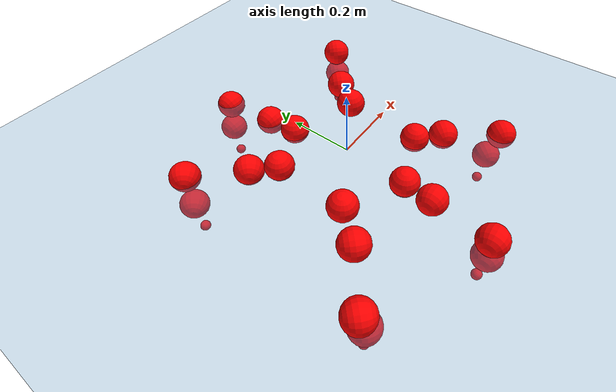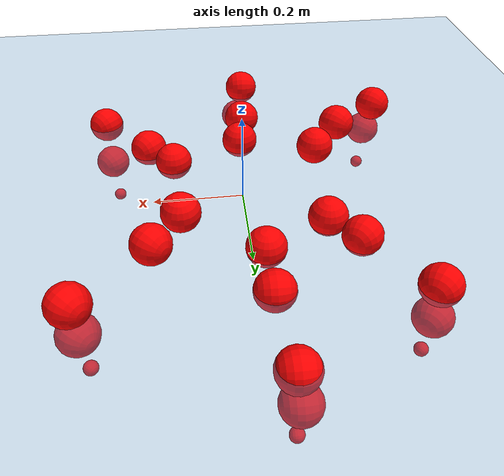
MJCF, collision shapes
<mujoco model="Golem">
  <compiler angle="radian" assetdir="assets" balanceinertia="true" inertiafromgeom="false"/>

  <option timestep="0.005" density="1.2" viscosity="2e-05"/>

  <size nkey="1"/>

  <visual>
    <quality shadowsize="8192"/>
    <map shadowclip="0.5"/>
  </visual>

  <default>
    <default class="/">
      <joint armature="0.01" damping="0.01" frictionloss="0.01"/>
      <geom contype="0" conaffinity="0" group="1" solref="-1000 -80"/>
      <site size="0.01 0.005 0.005" group="5"/>
      <general forcelimited="true" biastype="affine" gainprm="25" biasprm="0 -25 -0.5"/>
      <default class="visual">
        <geom type="mesh" group="2"/>
      </default>
      <default class="collision">
        <geom group="3"/>
      </default>
      <default class="foot">
        <geom size="0.01 0 0" condim="6" group="4" priority="1" solimp="0.015 1 0.01"/>
      </default>
      <default class="reward_collision_sphere">
        <geom group="5" rgba="1 0 0 1"/>
      </default>
    </default>
  </default>

  <asset>
    <texture type="skybox" colorspace="auto" name="//unnamed_texture_0" builtin="gradient" rgb1="0.95 0.95 0.95" rgb2="0.95 0.95 0.95" width="100" height="600"/>
    <texture type="2d" colorspace="auto" name="texplane" builtin="checker" rgb1="0.345 0.575 0.748" rgb2="0.345 0.575 0.748" markrgb="1 1 1" width="512" height="512"/>
    <material name="MatPlane" class="/" texture="texplane" texuniform="true" texrepeat="2 2" specular="0.9"/>
    <mesh name="body" class="/" file="body.stl" scale="0.001 0.001 0.001"/>
    <mesh name="coxa" class="/" file="coxa.stl" scale="0.001 0.001 0.001"/>
    <mesh name="femur" class="/" file="femur.stl" scale="0.001 0.001 0.001"/>
    <mesh name="tibia" class="/" file="tibia.stl" scale="0.001 0.001 0.001"/>
    <mesh name="tarsus" class="/" file="tarsus.stl" scale="0.001 0.001 0.001"/>
  </asset>

  <worldbody>
    <geom name="floor" class="/" size="100 100 0.125" type="plane" group="0" material="MatPlane"/>
    <light name="toplight_shadow" class="/" pos="0 0 5" dir="0.0990148 0.0990148 -0.990148" type="directional" ambient="0.04 0.04 0.04" diffuse="0.55 0.55 0.55" specular="0.12 0.12 0.12"/>
    <light name="toplight_fill" class="/" pos="0 0 5" dir="0.0990148 0.0990148 -0.990148" type="directional" castshadow="false" ambient="0.04 0.04 0.04" diffuse="0.3 0.3 0.3" specular="0.08 0.08 0.08"/>
    <body name="trunk" pos="-0.0161624 -0.0110095 -0.0103312" quat="1 -5.69768e-06 0.000121542 1.04334e-05">
      <inertial pos="-0.00665325 -0.00544058 -0.00549291" quat="0.999938 0.00420911 -0.00991603 0.00270628" mass="4.8244" diaginertia="0.0215806 0.124186 0.000339827"/>
      <joint name="//unnamed_joint_0" type="free"/>
      <geom name="//unnamed_geom_1" class="/" pos="0 0 0.0326837" quat="1 0 0 0" type="mesh" rgba="0.9 0.9 0.9 1" mesh="body"/>
      <site name="imu" class="/" pos="0.0664435 -0.0740219 0.0154017" size="0.0108325"/>
      <camera name="track" class="/" pos="0 -3.28163 0" quat="0.707107 0.707107 0 0" mode="trackcom"/>
      <camera name="ego_camera" class="/" pos="0.142772 0 0.0510683" quat="-0.5 -0.5 0.5 0.5"/>
      <body name="coxa_RR" pos="-0.195736 -0.135555 0.0489778" quat="0.382617 0.000419037 -0.000313208 -0.923907">
        <inertial pos="0.00109541 0.0168696 0.00898971" quat="0.998062 0.00355665 0.0114252 -0.0610644" mass="0.28633" diaginertia="0.0171421 0.12794 0.000376115"/>
        <joint name="coxa_joint_RR" class="/" pos="0 0 0" axis="0.0137603 0.0435978 -0.998954" stiffness="0.0743288" range="-3.13368 3.11792" armature="0.0178156" damping="0.0477732" frictionloss="0.0109645"/>
        <geom name="//unnamed_geom_2" class="/" type="mesh" rgba="0.2 0.2 0.2 1" mesh="coxa"/>
        <geom name="//unnamed_geom_3" class="reward_collision_sphere" size="0.0433299" pos="-0.0329473 0 0"/>
        <body name="femur_RR" pos="0.0808882 0.00986569 0.00487082" quat="0.500408 -0.50001 0.499675 0.499907">
          <inertial pos="0.0096484 0.00837451 0.00190005" quat="0.999334 0.00907862 -0.0235033 -0.0263908" mass="0.248919" diaginertia="0.0158811 0.106977 0.00026671"/>
          <joint name="femur_joint_RR" class="/" pos="0 0 0" axis="0.0259209 0.0226896 -0.999406" stiffness="0.0770061" range="-2.84597 3.38478" armature="0.0143752" damping="0.00674315" frictionloss="0.00321116"/>
          <geom name="//unnamed_geom_4" class="/" type="mesh" rgba="0.9 0.9 0.9 1" mesh="femur"/>
          <geom name="//unnamed_geom_5" class="reward_collision_sphere" size="0.0433299"/>
          <body name="tibia_RR" pos="0.0118084 -0.161624 -0.0170969" quat="0.00539913 0.999965 -0.00458065 0.00439591">
            <inertial pos="0.0147098 0.00559254 0.00126886" quat="0.999945 -0.00504411 -0.00910962 -0.000867374" mass="0.24115" diaginertia="0.0190689 0.146966 0.000452078"/>
            <joint name="tibia_joint_RR" class="/" pos="0 0 0" axis="0.0142239 0.0710748 0.99737" stiffness="0.00797637" range="-3.3233 2.91321" armature="0.0135478" damping="0.0250058" frictionloss="0.0105685"/>
            <geom name="//unnamed_geom_6" class="/" type="mesh" rgba="0.2 0.2 0.2 1" mesh="tibia"/>
            <geom name="//unnamed_geom_7" class="reward_collision_sphere" size="0.0433299"/>
            <body name="tarsus_RR" pos="0.0830838 -0.00359669 -0.0142586" quat="1 -9.96578e-05 -1.00378e-06 -3.08143e-05">
              <inertial pos="0.0513334 0.000703124 -0.00949024" quat="0.527405 0.488875 0.495284 0.487379" mass="0.258156" diaginertia="0.0143306 0.102797 0.0003554"/>
              <joint name="tarsus_joint_RR" class="/" pos="0 0 0" axis="0.00178695 -0.00230987 0.999996" range="-2.84753 2.90575" armature="0.0145214" damping="0.0218762" frictionloss="0.0160612"/>
              <geom name="//unnamed_geom_8" class="/" type="mesh" rgba="0.9 0.9 0.9 1" mesh="tarsus"/>
              <geom name="foot_1" class="foot" size="0.0112765" pos="0.123003 0 0" quat="0 -0.707107 0 0.707107"/>
              <geom name="//unnamed_geom_10" class="reward_collision_sphere" size="0.0433299"/>
              <geom name="//unnamed_geom_11" class="reward_collision_sphere" size="0.0162487" pos="0.118061 0 0"/>
              <site name="foot_1" class="foot" pos="0.123003 0 0" quat="0 -0.707107 0 0.707107" size="0.0108325"/>
            </body>
          </body>
        </body>
      </body>
      <body name="coxa_RM" pos="0.00200256 -0.226389 0.0252482" quat="0.704749 0.00216714 -0.00416736 -0.709441">
        <inertial pos="-0.0126945 -0.000209952 0.00940609" quat="0.998916 0.0220388 0.040552 -0.00608185" mass="0.283235" diaginertia="0.018027 0.143629 0.000295515"/>
        <joint name="coxa_joint_RM" class="/" pos="0 0 0" axis="-0.0218762 0.0194678 -0.999571" range="-2.97415 3.02988" armature="0.0109005" damping="0.0683707" frictionloss="0.0205559"/>
        <geom name="//unnamed_geom_12" class="/" type="mesh" rgba="0.2 0.2 0.2 1" mesh="coxa"/>
        <geom name="//unnamed_geom_13" class="reward_collision_sphere" size="0.0433299" pos="-0.0329473 0 0"/>
        <body name="femur_RM" pos="0.0582395 -0.0140936 0.00764172" quat="0.500988 -0.496765 0.496177 0.506008">
          <inertial pos="-0.0062052 0.00875417 -0.000635792" quat="0.999209 0.0322146 0.0176008 0.0152656" mass="0.206871" diaginertia="0.0127011 0.10998 0.000270134"/>
          <joint name="femur_joint_RM" class="/" pos="0 0 0" axis="0.0213219 0.050819 -0.99848" range="-3.21125 3.14412" armature="0.0159665" damping="0" frictionloss="0.0111945"/>
          <geom name="//unnamed_geom_14" class="/" type="mesh" rgba="0.9 0.9 0.9 1" mesh="femur"/>
          <geom name="//unnamed_geom_15" class="reward_collision_sphere" size="0.0433299"/>
          <body name="tibia_RM" pos="0.00403731 -0.174853 -0.0166402" quat="0.000817212 0.999999 8.64699e-05 -0.00100204">
            <inertial pos="-0.0120404 0.0165981 -0.00194864" quat="0.997191 0.0426595 0.0562718 -0.0249669" mass="0.331551" diaginertia="0.0179559 0.103158 0.00040636"/>
            <joint name="tibia_joint_RM" class="/" pos="0 0 0" axis="-0.000481423 0.000483979 1" range="-2.83919 2.78161" armature="0.0113453" damping="0.00821996" frictionloss="0.00750302"/>
            <geom name="//unnamed_geom_16" class="/" type="mesh" rgba="0.2 0.2 0.2 1" mesh="tibia"/>
            <geom name="//unnamed_geom_17" class="reward_collision_sphere" size="0.0433299"/>
            <body name="tarsus_RM" pos="0.0955133 0.00541926 -0.0117489" quat="1 -0.000135871 -0.000145002 0.000121914">
              <inertial pos="0.0600552 0.0118841 -0.0130241" quat="0.45659 0.544035 0.534781 0.457778" mass="0.201162" diaginertia="0.0188428 0.134804 0.000403841"/>
              <joint name="tarsus_joint_RM" class="/" pos="0 0 0" axis="0.0144175 -0.00341243 0.99989" stiffness="0.0612602" range="-3.37022 3.27627" armature="0.00584298" damping="0.00936549" frictionloss="0.0114942"/>
              <geom name="//unnamed_geom_18" class="/" type="mesh" rgba="0.9 0.9 0.9 1" mesh="tarsus"/>
              <geom name="foot_2" class="foot" size="0.00811989" pos="0.123003 0 0" quat="0 -0.707107 0 0.707107"/>
              <geom name="//unnamed_geom_20" class="reward_collision_sphere" size="0.0433299"/>
              <geom name="//unnamed_geom_21" class="reward_collision_sphere" size="0.0162487" pos="0.118061 0 0"/>
              <site name="foot_2" class="foot" pos="0.123003 0 0" quat="0 -0.707107 0 0.707107" size="0.0108325"/>
            </body>
          </body>
        </body>
      </body>
      <body name="coxa_RF" pos="0.192689 -0.152577 0.0179557" quat="0.923638 0.00096392 0.000816117 -0.383264">
        <inertial pos="0.00734872 -0.0104901 -0.00231335" quat="0.999999 -0.000958588 -0.000143117 -0.00106947" mass="0.237078" diaginertia="0.0158447 0.100338 0.000362101"/>
        <joint name="coxa_joint_RF" class="/" pos="0 0 0" axis="-0.0135767 0.00565809 -0.999892" range="-3.18473 3.01014" armature="0.00311441" damping="0" frictionloss="0.0091293"/>
        <geom name="//unnamed_geom_22" class="/" type="mesh" rgba="0.2 0.2 0.2 1" mesh="coxa"/>
        <geom name="//unnamed_geom_23" class="reward_collision_sphere" size="0.0433299" pos="-0.0329473 0 0"/>
        <body name="femur_RF" pos="0.0553761 -0.00143443 0.000493801" quat="0.501177 -0.502479 0.49723 0.499098">
          <inertial pos="-0.00872736 0.0116516 -0.00241188" quat="0.998997 -0.0156946 0.0419056 -0.0017432" mass="0.285486" diaginertia="0.0157506 0.151841 0.000313473"/>
          <joint name="femur_joint_RF" class="/" pos="0 0 0" axis="-0.00113599 -0.000953253 -0.999999" range="-2.80965 2.99113" armature="0.0193558" damping="0.0147369" frictionloss="0.0036136"/>
          <geom name="//unnamed_geom_24" class="/" type="mesh" rgba="0.9 0.9 0.9 1" mesh="femur"/>
          <geom name="//unnamed_geom_25" class="reward_collision_sphere" size="0.0433299"/>
          <body name="tibia_RF" pos="0.0133832 -0.182519 -0.0171432" quat="0.000828461 0.999999 0.000228893 -0.000552787">
            <inertial pos="0.0169898 0.00302403 0.00575107" quat="0.999995 -0.00267176 -0.00116223 -0.000721882" mass="0.189883" diaginertia="0.0168426 0.0944598 0.000309727"/>
            <joint name="tibia_joint_RF" class="/" pos="0 0 0" axis="0.0623922 -0.0540175 0.996589" range="-3.00856 3.47142" armature="0.0148387" damping="0.00645404" frictionloss="0.0104705"/>
            <geom name="//unnamed_geom_26" class="/" type="mesh" rgba="0.2 0.2 0.2 1" mesh="tibia"/>
            <geom name="//unnamed_geom_27" class="reward_collision_sphere" size="0.0433299"/>
            <body name="tarsus_RF" pos="0.107411 -0.0155278 -0.0142826" quat="0.999968 -0.00359359 -0.00343473 -0.00619258">
              <inertial pos="0.0653207 -0.00564684 -0.00219451" quat="0.489583 0.502214 0.502067 0.505982" mass="0.266061" diaginertia="0.0149223 0.127441 0.000300414"/>
              <joint name="tarsus_joint_RF" class="/" pos="0 0 0" axis="0.0341942 0.0451049 0.998397" stiffness="0.0419931" range="-2.96971 3.26763" armature="0.00527286" damping="0" frictionloss="0.0162254"/>
              <geom name="//unnamed_geom_28" class="/" type="mesh" rgba="0.9 0.9 0.9 1" mesh="tarsus"/>
              <geom name="foot_3" class="foot" size="0.00558017" pos="0.123003 0 0" quat="0 -0.707107 0 0.707107"/>
              <geom name="//unnamed_geom_30" class="reward_collision_sphere" size="0.0433299"/>
              <geom name="//unnamed_geom_31" class="reward_collision_sphere" size="0.0162487" pos="0.118061 0 0"/>
              <site name="foot_3" class="foot" pos="0.123003 0 0" quat="0 -0.707107 0 0.707107" size="0.0108325"/>
            </body>
          </body>
        </body>
      </body>
      <body name="coxa_LR" pos="-0.178739 0.143505 0.0281934" quat="0.381962 0.00174259 -0.000529178 0.924176">
        <inertial pos="0.0156392 -0.00995511 0.0175305" quat="0.996538 -0.0324208 0.0660222 -0.038747" mass="0.246449" diaginertia="0.0130882 0.0778976 0.000265022"/>
        <joint name="coxa_joint_LR" class="/" pos="0 0 0" axis="-0.0238532 0.0759321 -0.996828" range="-3.00134 3.34424" armature="0.0167661" damping="0.0352218" frictionloss="0.0182245"/>
        <geom name="//unnamed_geom_32" class="/" type="mesh" rgba="0.2 0.2 0.2 1" mesh="coxa"/>
        <geom name="//unnamed_geom_33" class="reward_collision_sphere" size="0.0433299" pos="-0.0329473 0 0"/>
        <body name="femur_LR" pos="0.0520042 -0.00253911 -0.00443689" quat="0.500492 -0.500179 0.499608 0.499722">
          <inertial pos="0.00833617 -0.00361792 0.00367057" quat="0.998614 0.022773 0.0322521 0.0348043" mass="0.253594" diaginertia="0.0153687 0.0961364 0.000353263"/>
          <joint name="femur_joint_LR" class="/" pos="0 0 0" axis="0.04187 0.0364347 0.998459" range="-3.28312 3.20158" armature="0.00806205" damping="0" frictionloss="0.0201066"/>
          <geom name="//unnamed_geom_34" class="/" type="mesh" rgba="0.9 0.9 0.9 1" mesh="femur"/>
          <geom name="//unnamed_geom_35" class="reward_collision_sphere" size="0.0433299"/>
          <body name="tibia_LR" pos="0.0129794 -0.178453 -0.0147198" quat="0.000508522 0.99997 -0.00343501 0.00686691">
            <inertial pos="-0.00277436 -0.00275354 -0.000247657" quat="0.999688 0.00924627 -0.0185184 0.0139673" mass="0.201699" diaginertia="0.0135173 0.113411 0.000320355"/>
            <joint name="tibia_joint_LR" class="/" pos="0 0 0" axis="0.0163967 0.0499186 -0.998619" range="-2.93763 3.41063" armature="0.0125126" damping="0.027421" frictionloss="0.00904404"/>
            <geom name="//unnamed_geom_36" class="/" type="mesh" rgba="0.2 0.2 0.2 1" mesh="tibia"/>
            <geom name="//unnamed_geom_37" class="reward_collision_sphere" size="0.0433299"/>
            <body name="tarsus_LR" pos="0.111434 0.00290699 -0.0133344" quat="0.999968 0.00498763 0.00471988 -0.00402048">
              <inertial pos="0.0489195 0.000250425 0.0168657" quat="0.503591 0.497948 0.499222 0.499221" mass="0.263746" diaginertia="0.0143345 0.124866 0.000327693"/>
              <joint name="tarsus_joint_LR" class="/" pos="0 0 0" axis="0.0474342 -0.057767 -0.997203" stiffness="0.01185" range="-2.85529 3.42316" armature="0.00878381" damping="0.0449765" frictionloss="0.00653437"/>
              <geom name="//unnamed_geom_38" class="/" type="mesh" rgba="0.9 0.9 0.9 1" mesh="tarsus"/>
              <geom name="foot_4" class="foot" size="0.00640882" pos="0.123003 0 0" quat="0.707107 0 -0.707107 0"/>
              <geom name="//unnamed_geom_40" class="reward_collision_sphere" size="0.0433299"/>
              <geom name="//unnamed_geom_41" class="reward_collision_sphere" size="0.0162487" pos="0.118061 0 0"/>
              <site name="foot_4" class="foot" pos="0.123003 0 0" quat="0.707107 0 -0.707107 0" size="0.0108325"/>
            </body>
          </body>
        </body>
      </body>
      <body name="coxa_LM" pos="-0.013475 0.219383 0.0183668" quat="0.70759 0.0012511 -0.00455387 0.706607">
        <inertial pos="-0.00658657 0.00793247 -0.000305421" quat="0.998301 0.0571703 0.000422577 -0.0112569" mass="0.278529" diaginertia="0.0198666 0.12376 0.000381382"/>
        <joint name="coxa_joint_LM" class="/" pos="0 0 0" axis="-0.0201632 0.0108885 -0.999737" stiffness="0.0572744" range="-3.42194 3.08088" armature="0.00555723" damping="0" frictionloss="0.00348474"/>
        <geom name="//unnamed_geom_42" class="/" type="mesh" rgba="0.2 0.2 0.2 1" mesh="coxa"/>
        <geom name="//unnamed_geom_43" class="reward_collision_sphere" size="0.0433299" pos="-0.0329473 0 0"/>
        <body name="femur_LM" pos="0.0680098 0.0026659 -0.0167187" quat="0.495976 -0.501019 0.50443 0.498535">
          <inertial pos="-0.00963206 0.0142024 -0.0173287" quat="0.996768 -0.0542103 0.0286131 0.0519156" mass="0.231531" diaginertia="0.0127659 0.133121 0.000284985"/>
          <joint name="femur_joint_LM" class="/" pos="0 0 0" axis="-0.0250898 -0.052131 0.998325" range="-3.13665 3.41339" armature="0.00551865" damping="0" frictionloss="0.0105117"/>
          <geom name="//unnamed_geom_44" class="/" type="mesh" rgba="0.9 0.9 0.9 1" mesh="femur"/>
          <geom name="//unnamed_geom_45" class="reward_collision_sphere" size="0.0433299"/>
          <body name="tibia_LM" pos="0.0103003 -0.167702 0.0146144" quat="0.00102968 0.999962 -0.00813246 0.00284075">
            <inertial pos="-0.00586474 0.0179627 -0.00751864" quat="0.998252 -0.0440436 0.0175983 -0.0352738" mass="0.281925" diaginertia="0.0145303 0.0971704 0.000316053"/>
            <joint name="tibia_joint_LM" class="/" pos="0 0 0" axis="0.000488655 -0.00170929 -0.999998" stiffness="0.0146389" range="-3.16513 2.99184" armature="0.00334902" damping="0.0870958" frictionloss="0.0164094"/>
            <geom name="//unnamed_geom_46" class="/" type="mesh" rgba="0.2 0.2 0.2 1" mesh="tibia"/>
            <geom name="//unnamed_geom_47" class="reward_collision_sphere" size="0.0433299"/>
            <body name="tarsus_LM" pos="0.101179 0.00572548 -0.0114529" quat="0.99996 0.00755325 0.00307232 -0.00367913">
              <inertial pos="0.0782156 0.00225417 0.0102448" quat="0.499377 0.499617 0.501563 0.49944" mass="0.262301" diaginertia="0.0214884 0.155248 0.000354316"/>
              <joint name="tarsus_joint_LM" class="/" pos="0 0 0" axis="0.00230628 0.000138869 -0.999997" stiffness="0.00228953" range="-3.48415 3.01089" armature="0.00285903" damping="0.0976533" frictionloss="0.00617046"/>
              <geom name="//unnamed_geom_48" class="/" type="mesh" rgba="0.9 0.9 0.9 1" mesh="tarsus"/>
              <geom name="foot_5" class="foot" size="0.00747552" pos="0.123003 0 0" quat="0.707107 0 -0.707107 0"/>
              <geom name="//unnamed_geom_50" class="reward_collision_sphere" size="0.0433299"/>
              <geom name="//unnamed_geom_51" class="reward_collision_sphere" size="0.0162487" pos="0.118061 0 0"/>
              <site name="foot_5" class="foot" pos="0.123003 0 0" quat="0.707107 0 -0.707107 0" size="0.0108325"/>
            </body>
          </body>
        </body>
      </body>
      <body name="coxa_LF" pos="0.17822 0.119988 0.0492637" quat="0.923572 -0.00148026 0.000136893 0.383422">
        <inertial pos="0.00322573 -0.0035028 0.00843531" quat="0.998127 -0.00802765 -0.0355791 -0.0491117" mass="0.347893" diaginertia="0.0185524 0.141281 0.000442961"/>
        <joint name="coxa_joint_LF" class="/" pos="0 0 0" axis="0.0124772 0.0108647 -0.999863" range="-2.95535 2.7961" armature="0.00344112" damping="0.0964792" frictionloss="0.0173317"/>
        <geom name="//unnamed_geom_52" class="/" type="mesh" rgba="0.2 0.2 0.2 1" mesh="coxa"/>
        <geom name="//unnamed_geom_53" class="reward_collision_sphere" size="0.0433299" pos="-0.0329473 0 0"/>
        <body name="femur_LF" pos="0.0685518 0.0158792 -0.00403408" quat="0.497008 -0.502503 0.505012 0.495416">
          <inertial pos="-0.0169425 -0.000197323 -0.003138" quat="0.999439 -0.0178711 0.00216537 0.0282443" mass="0.294901" diaginertia="0.0174063 0.131731 0.000432439"/>
          <joint name="femur_joint_LF" class="/" pos="0 0 0" axis="0.0127448 0.00542486 0.999904" stiffness="0.00610423" range="-3.36806 3.02865" armature="0.00339451" damping="0" frictionloss="0.0143392"/>
          <geom name="//unnamed_geom_54" class="/" type="mesh" rgba="0.9 0.9 0.9 1" mesh="femur"/>
          <geom name="//unnamed_geom_55" class="reward_collision_sphere" size="0.0433299"/>
          <body name="tibia_LF" pos="0.00821371 -0.19256 -0.0113533" quat="-0.000354314 0.999998 -0.000631093 0.00165384">
            <inertial pos="0.000765948 -0.0128975 -0.00910323" quat="0.999396 -0.0217748 -0.0187918 -0.0195093" mass="0.283492" diaginertia="0.0173339 0.11351 0.000345715"/>
            <joint name="tibia_joint_LF" class="/" pos="0 0 0" axis="-0.0245124 0.00575939 -0.999683" stiffness="0.0528251" range="-3.15067 3.07023" armature="0.0175484" damping="0.0659443" frictionloss="0.00543851"/>
            <geom name="//unnamed_geom_56" class="/" type="mesh" rgba="0.2 0.2 0.2 1" mesh="tibia"/>
            <geom name="//unnamed_geom_57" class="reward_collision_sphere" size="0.0433299"/>
            <body name="tarsus_LF" pos="0.0894399 2.05127e-05 0.000305246" quat="0.999967 0.0016302 0.00389051 -0.00688012">
              <inertial pos="0.0667774 -0.00250263 0.00966971" quat="0.545817 0.484052 0.506138 0.460002" mass="0.202195" diaginertia="0.0139906 0.0901459 0.0002781"/>
              <joint name="tarsus_joint_LF" class="/" pos="0 0 0" axis="-0.0303851 -0.0387156 -0.998788" range="-2.87384 2.94591" armature="0.0111731" damping="0.0951997" frictionloss="0.0126091"/>
              <geom name="//unnamed_geom_58" class="/" type="mesh" rgba="0.9 0.9 0.9 1" mesh="tarsus"/>
              <geom name="foot_6" class="foot" size="0.010702" pos="0.123003 0 0" quat="0.707107 0 -0.707107 0"/>
              <geom name="//unnamed_geom_60" class="reward_collision_sphere" size="0.0433299"/>
              <geom name="//unnamed_geom_61" class="reward_collision_sphere" size="0.0162487" pos="0.118061 0 0"/>
              <site name="foot_6" class="foot" pos="0.123003 0 0" quat="0.707107 0 -0.707107 0" size="0.0108325"/>
            </body>
          </body>
        </body>
      </body>
    </body>
  </worldbody>

  <contact>
    <pair class="/" geom1="floor" geom2="foot_1" name="//unnamed_contact_0"/>
    <pair class="/" geom1="floor" geom2="foot_2" name="//unnamed_contact_1"/>
    <pair class="/" geom1="floor" geom2="foot_3" name="//unnamed_contact_2"/>
    <pair class="/" geom1="floor" geom2="foot_4" name="//unnamed_contact_3"/>
    <pair class="/" geom1="floor" geom2="foot_5" name="//unnamed_contact_4"/>
    <pair class="/" geom1="floor" geom2="foot_6" name="//unnamed_contact_5"/>
  </contact>

  <actuator>
    <general name="coxa_joint_RR" class="/" joint="coxa_joint_RR" forcerange="-6.7586 6.7586" gainprm="22.4386" biasprm="0 -22.4386 -0.596897"/>
    <general name="femur_joint_RR" class="/" joint="femur_joint_RR" forcerange="-7.85621 7.85621" gainprm="22.4386" biasprm="0 -22.4386 -0.596897"/>
    <general name="tibia_joint_RR" class="/" joint="tibia_joint_RR" forcerange="-7.63318 7.63318" gainprm="22.4386" biasprm="0 -22.4386 -0.596897"/>
    <general name="tarsus_joint_RR" class="/" joint="tarsus_joint_RR" forcerange="-4.02264 4.02264" gainprm="22.4386" biasprm="0 -22.4386 -0.596897"/>
    <general name="coxa_joint_RM" class="/" joint="coxa_joint_RM" forcerange="-12.8406 12.8406" gainprm="22.4386" biasprm="0 -22.4386 -0.596897"/>
    <general name="femur_joint_RM" class="/" joint="femur_joint_RM" forcerange="-9.58549 9.58549" gainprm="22.4386" biasprm="0 -22.4386 -0.596897"/>
    <general name="tibia_joint_RM" class="/" joint="tibia_joint_RM" forcerange="-11.2658 11.2658" gainprm="22.4386" biasprm="0 -22.4386 -0.596897"/>
    <general name="tarsus_joint_RM" class="/" joint="tarsus_joint_RM" forcerange="-6.8072 6.8072" gainprm="22.4386" biasprm="0 -22.4386 -0.596897"/>
    <general name="coxa_joint_RF" class="/" joint="coxa_joint_RF" forcerange="-12.5924 12.5924" gainprm="22.4386" biasprm="0 -22.4386 -0.596897"/>
    <general name="femur_joint_RF" class="/" joint="femur_joint_RF" forcerange="-11.0216 11.0216" gainprm="22.4386" biasprm="0 -22.4386 -0.596897"/>
    <general name="tibia_joint_RF" class="/" joint="tibia_joint_RF" forcerange="-13.0028 13.0028" gainprm="22.4386" biasprm="0 -22.4386 -0.596897"/>
    <general name="tarsus_joint_RF" class="/" joint="tarsus_joint_RF" forcerange="-4.91046 4.91046" gainprm="22.4386" biasprm="0 -22.4386 -0.596897"/>
    <general name="coxa_joint_LR" class="/" joint="coxa_joint_LR" forcerange="-8.11165 8.11165" gainprm="22.4386" biasprm="0 -22.4386 -0.596897"/>
    <general name="femur_joint_LR" class="/" joint="femur_joint_LR" forcerange="-7.14266 7.14266" gainprm="22.4386" biasprm="0 -22.4386 -0.596897"/>
    <general name="tibia_joint_LR" class="/" joint="tibia_joint_LR" forcerange="-8.66971 8.66971" gainprm="22.4386" biasprm="0 -22.4386 -0.596897"/>
    <general name="tarsus_joint_LR" class="/" joint="tarsus_joint_LR" forcerange="-5.53677 5.53677" gainprm="22.4386" biasprm="0 -22.4386 -0.596897"/>
    <general name="coxa_joint_LM" class="/" joint="coxa_joint_LM" forcerange="-3.7611 3.7611" gainprm="22.4386" biasprm="0 -22.4386 -0.596897"/>
    <general name="femur_joint_LM" class="/" joint="femur_joint_LM" forcerange="-8.10977 8.10977" gainprm="22.4386" biasprm="0 -22.4386 -0.596897"/>
    <general name="tibia_joint_LM" class="/" joint="tibia_joint_LM" forcerange="-8.97193 8.97193" gainprm="22.4386" biasprm="0 -22.4386 -0.596897"/>
    <general name="tarsus_joint_LM" class="/" joint="tarsus_joint_LM" forcerange="-7.12103 7.12103" gainprm="22.4386" biasprm="0 -22.4386 -0.596897"/>
    <general name="coxa_joint_LF" class="/" joint="coxa_joint_LF" forcerange="-13.0969 13.0969" gainprm="22.4386" biasprm="0 -22.4386 -0.596897"/>
    <general name="femur_joint_LF" class="/" joint="femur_joint_LF" forcerange="-7.37988 7.37988" gainprm="22.4386" biasprm="0 -22.4386 -0.596897"/>
    <general name="tibia_joint_LF" class="/" joint="tibia_joint_LF" forcerange="-6.1246 6.1246" gainprm="22.4386" biasprm="0 -22.4386 -0.596897"/>
    <general name="tarsus_joint_LF" class="/" joint="tarsus_joint_LF" forcerange="-11.0388 11.0388" gainprm="22.4386" biasprm="0 -22.4386 -0.596897"/>
  </actuator>

  <sensor>
    <gyro site="imu" name="imu_angular_velocity"/>
    <velocimeter site="imu" name="imu_linear_velocity"/>
    <framelinvel objtype="site" objname="foot_1" name="foot_1_global_linear_velocity"/>
    <framelinvel objtype="site" objname="foot_2" name="foot_2_global_linear_velocity"/>
    <framelinvel objtype="site" objname="foot_3" name="foot_3_global_linear_velocity"/>
    <framelinvel objtype="site" objname="foot_4" name="foot_4_global_linear_velocity"/>
    <framelinvel objtype="site" objname="foot_5" name="foot_5_global_linear_velocity"/>
    <framelinvel objtype="site" objname="foot_6" name="foot_6_global_linear_velocity"/>
  </sensor>

  <keyframe>
    <key name="home" qpos="0 0 0.1457 1 0 0 0 0 0 0 0 0 0 0 0 0 0 0 0 0 0 0 0 0 0 0 0 0 0 0 0"/>
  </keyframe>
</mujoco>
